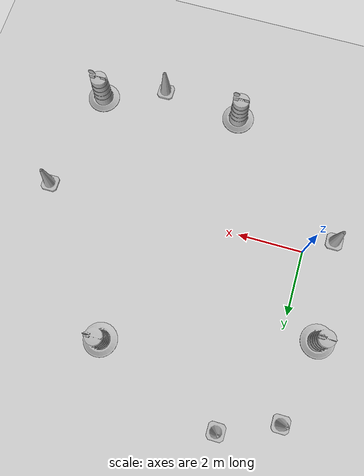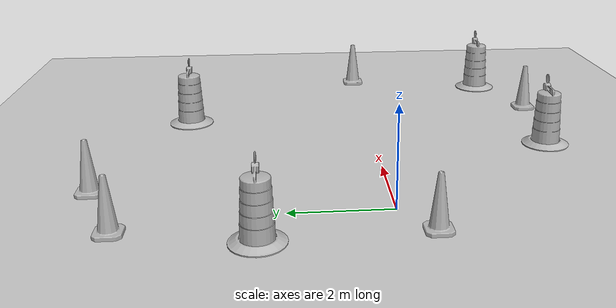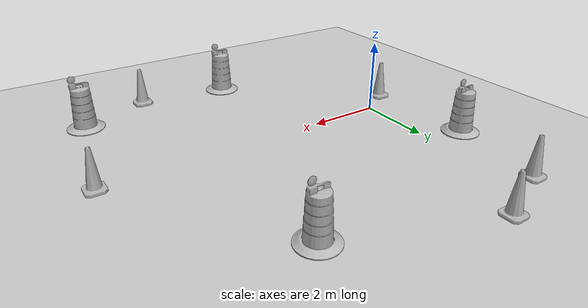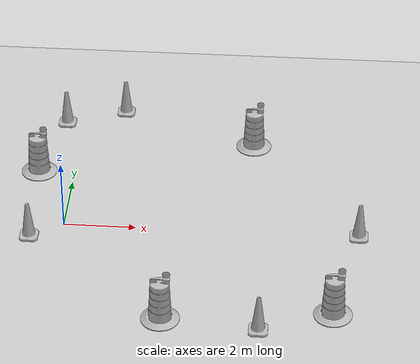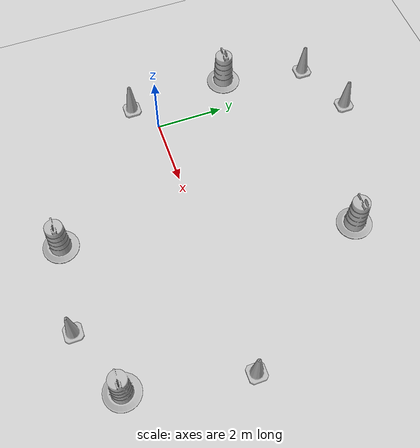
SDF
<sdf version="1.7">
 <world name="default">
  <light name="sun" type="directional">
   <pose>0 0 10 0 -0 0</pose>
   <diffuse>0.8 0.8 0.8 1</diffuse>
   <specular>0.2 0.2 0.2 1</specular>
   <attenuation>
    <range>1000</range>
    <constant>0.9</constant>
    <linear>0.01</linear>
    <quadratic>0.001</quadratic>
   </attenuation>
   <direction>-0.5 0.1 -0.9</direction>
   <spot><inner_angle>0</inner_angle><outer_angle>0</outer_angle><falloff>0</falloff></spot>
  </light>
  <model name="ground_plane">
   <static>1</static>
   <link name="link">
    <collision name="collision">
     <geometry><plane><normal>0 0 1</normal><size>100 100</size></plane></geometry>
     <surface><friction><ode><mu>100</mu><mu2>50</mu2></ode></friction></surface>
    </collision>
    <visual name="visual">
     <cast_shadows>0</cast_shadows>
     <geometry><plane><normal>0 0 1</normal><size>100 100</size></plane></geometry>
     <material>
      <script><uri>file://media/materials/scripts/gazebo.material</uri><name>Gazebo/Grey</name></script>
     </material>
    </visual>
   </link>
  </model>
  <gravity>0 0 -9.8</gravity>
  <magnetic_field>6e-06 2.3e-05 -4.2e-05</magnetic_field>
  <atmosphere type="adiabatic"/>
  <physics type="ode">
   <max_step_size>0.001</max_step_size>
   <real_time_factor>1</real_time_factor>
   <real_time_update_rate>1000</real_time_update_rate>
  </physics>
  <scene><ambient>0.4 0.4 0.4 1</ambient><background>0.7 0.7 0.7 1</background><shadows>1</shadows></scene>
  <audio><device>default</device></audio>
  <spherical_coordinates>
   <surface_model>EARTH_WGS84</surface_model>
   <latitude_deg>0</latitude_deg>
   <longitude_deg>0</longitude_deg>
   <elevation>0</elevation>
   <heading_deg>0</heading_deg>
  </spherical_coordinates>
  <model name="Construction Barrel">
   <link name="link">
    <inertial>
     <pose>0 0 0.4 0 -0 0</pose>
     <mass>500</mass>
     <inertia><ixx>51.2096</ixx><iyy>51.2096</iyy><izz>25</izz><ixy>0</ixy><ixz>0</ixz><iyz>0</iyz></inertia>
    </inertial>
    <collision name="collision">
     <geometry><mesh><uri>model://construction_barrel/meshes/construction_barrel.dae</uri></mesh></geometry>
    </collision>
    <visual name="visual">
     <geometry><mesh><uri>model://construction_barrel/meshes/construction_barrel.dae</uri></mesh></geometry>
    </visual>
   </link>
   <pose>-1.02769 2.48382 -2e-06 7e-06 -4e-06 -1.8e-05</pose>
  </model>
  <model name="Construction Cone">
   <link name="link">
    <collision name="collision">
     <geometry>
      <mesh><scale>10 10 10</scale><uri>model://construction_cone/meshes/construction_cone.dae</uri></mesh>
     </geometry>
    </collision>
    <visual name="visual">
     <geometry>
      <mesh><scale>10 10 10</scale><uri>model://construction_cone/meshes/construction_cone.dae</uri></mesh>
     </geometry>
    </visual>
    <inertial>
     <inertia><ixx>1</ixx><ixy>0</ixy><ixz>0</ixz><iyy>1</iyy><iyz>0</iyz><izz>1</izz></inertia>
     <mass>1</mass>
    </inertial>
   </link>
   <pose>-0.875403 -0.586779 -0 0 -0 0</pose>
  </model>
  <model name="Construction Barrel_0">
   <link name="link">
    <inertial>
     <pose>0 0 0.4 0 -0 0</pose>
     <mass>500</mass>
     <inertia><ixx>51.2096</ixx><iyy>51.2096</iyy><izz>25</izz><ixy>0</ixy><ixz>0</ixz><iyz>0</iyz></inertia>
    </inertial>
    <collision name="collision">
     <geometry><mesh><uri>model://construction_barrel/meshes/construction_barrel.dae</uri></mesh></geometry>
    </collision>
    <visual name="visual">
     <geometry><mesh><uri>model://construction_barrel/meshes/construction_barrel.dae</uri></mesh></geometry>
    </visual>
   </link>
   <pose>3.00306 -3.79235 -1e-06 1e-06 -9e-06 -1.7e-05</pose>
  </model>
  <model name="Construction Cone_0">
   <link name="link">
    <collision name="collision">
     <geometry>
      <mesh><scale>10 10 10</scale><uri>model://construction_cone/meshes/construction_cone.dae</uri></mesh>
     </geometry>
    </collision>
    <visual name="visual">
     <geometry>
      <mesh><scale>10 10 10</scale><uri>model://construction_cone/meshes/construction_cone.dae</uri></mesh>
     </geometry>
    </visual>
    <inertial>
     <inertia><ixx>1</ixx><ixy>0</ixy><ixz>0</ixz><iyy>1</iyy><iyz>0</iyz><izz>1</izz></inertia>
     <mass>1</mass>
    </inertial>
   </link>
   <pose>5.54353 -4.08587 -0 0 -0 0</pose>
  </model>
  <model name="Construction Barrel_1">
   <link name="link">
    <inertial>
     <pose>0 0 0.4 0 -0 0</pose>
     <mass>500</mass>
     <inertia><ixx>51.2096</ixx><iyy>51.2096</iyy><izz>25</izz><ixy>0</ixy><ixz>0</ixz><iyz>0</iyz></inertia>
    </inertial>
    <collision name="collision">
     <geometry><mesh><uri>model://construction_barrel/meshes/construction_barrel.dae</uri></mesh></geometry>
    </collision>
    <visual name="visual">
     <geometry><mesh><uri>model://construction_barrel/meshes/construction_barrel.dae</uri></mesh></geometry>
    </visual>
   </link>
   <pose>7.44404 -3.31554 -2e-06 -6e-06 -4e-06 -1.1e-05</pose>
  </model>
  <model name="Construction Cone_1">
   <link name="link">
    <collision name="collision">
     <geometry>
      <mesh><scale>10 10 10</scale><uri>model://construction_cone/meshes/construction_cone.dae</uri></mesh>
     </geometry>
    </collision>
    <visual name="visual">
     <geometry>
      <mesh><scale>10 10 10</scale><uri>model://construction_cone/meshes/construction_cone.dae</uri></mesh>
     </geometry>
    </visual>
    <inertial>
     <inertia><ixx>1</ixx><ixy>0</ixy><ixz>0</ixz><iyy>1</iyy><iyz>0</iyz><izz>1</izz></inertia>
     <mass>1</mass>
    </inertial>
   </link>
   <pose>8.12289 0.006687 -0 0 -0 0</pose>
  </model>
  <model name="Construction Barrel_2">
   <link name="link">
    <inertial>
     <pose>0 0 0.4 0 -0 0</pose>
     <mass>500</mass>
     <inertia><ixx>51.2096</ixx><iyy>51.2096</iyy><izz>25</izz><ixy>0</ixy><ixz>0</ixz><iyz>0</iyz></inertia>
    </inertial>
    <collision name="collision">
     <geometry><mesh><uri>model://construction_barrel/meshes/construction_barrel.dae</uri></mesh></geometry>
    </collision>
    <visual name="visual">
     <geometry><mesh><uri>model://construction_barrel/meshes/construction_barrel.dae</uri></mesh></geometry>
    </visual>
   </link>
   <pose>5.06383 4.17957 -2e-06 7e-06 -4e-06 -9e-06</pose>
  </model>
  <model name="Construction Cone_2">
   <link name="link">
    <collision name="collision">
     <geometry>
      <mesh><scale>10 10 10</scale><uri>model://construction_cone/meshes/construction_cone.dae</uri></mesh>
     </geometry>
    </collision>
    <visual name="visual">
     <geometry>
      <mesh><scale>10 10 10</scale><uri>model://construction_cone/meshes/construction_cone.dae</uri></mesh>
     </geometry>
    </visual>
    <inertial>
     <inertia><ixx>1</ixx><ixy>0</ixy><ixz>0</ixz><iyy>1</iyy><iyz>0</iyz><izz>1</izz></inertia>
     <mass>1</mass>
    </inertial>
   </link>
   <pose>1.15915 5.69022 -0 0 -0 0</pose>
  </model>
  <model name="Construction Cone_3">
   <link name="link">
    <collision name="collision">
     <geometry>
      <mesh><scale>10 10 10</scale><uri>model://construction_cone/meshes/construction_cone.dae</uri></mesh>
     </geometry>
    </collision>
    <visual name="visual">
     <geometry>
      <mesh><scale>10 10 10</scale><uri>model://construction_cone/meshes/construction_cone.dae</uri></mesh>
     </geometry>
    </visual>
    <inertial>
     <inertia><ixx>1</ixx><ixy>0</ixy><ixz>0</ixz><iyy>1</iyy><iyz>0</iyz><izz>1</izz></inertia>
     <mass>1</mass>
    </inertial>
   </link>
   <pose>-0.535256 4.99997 1e-06 4e-06 -0 0</pose>
  </model>
 </world>
</sdf>
